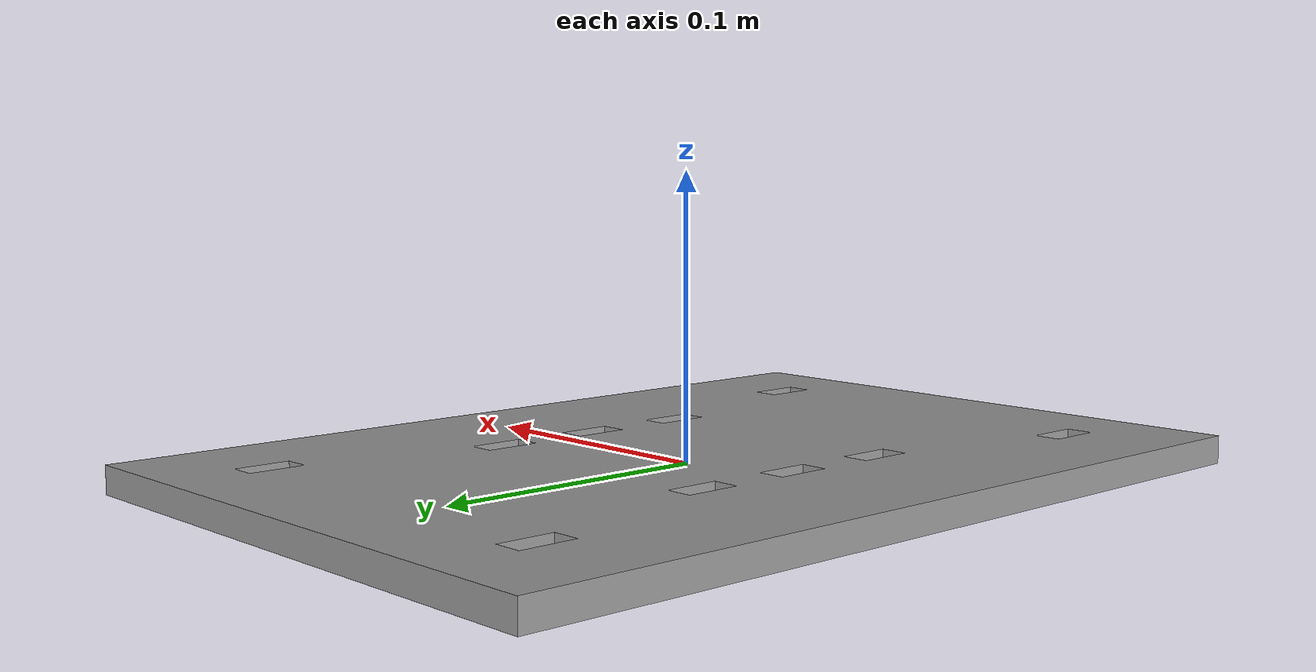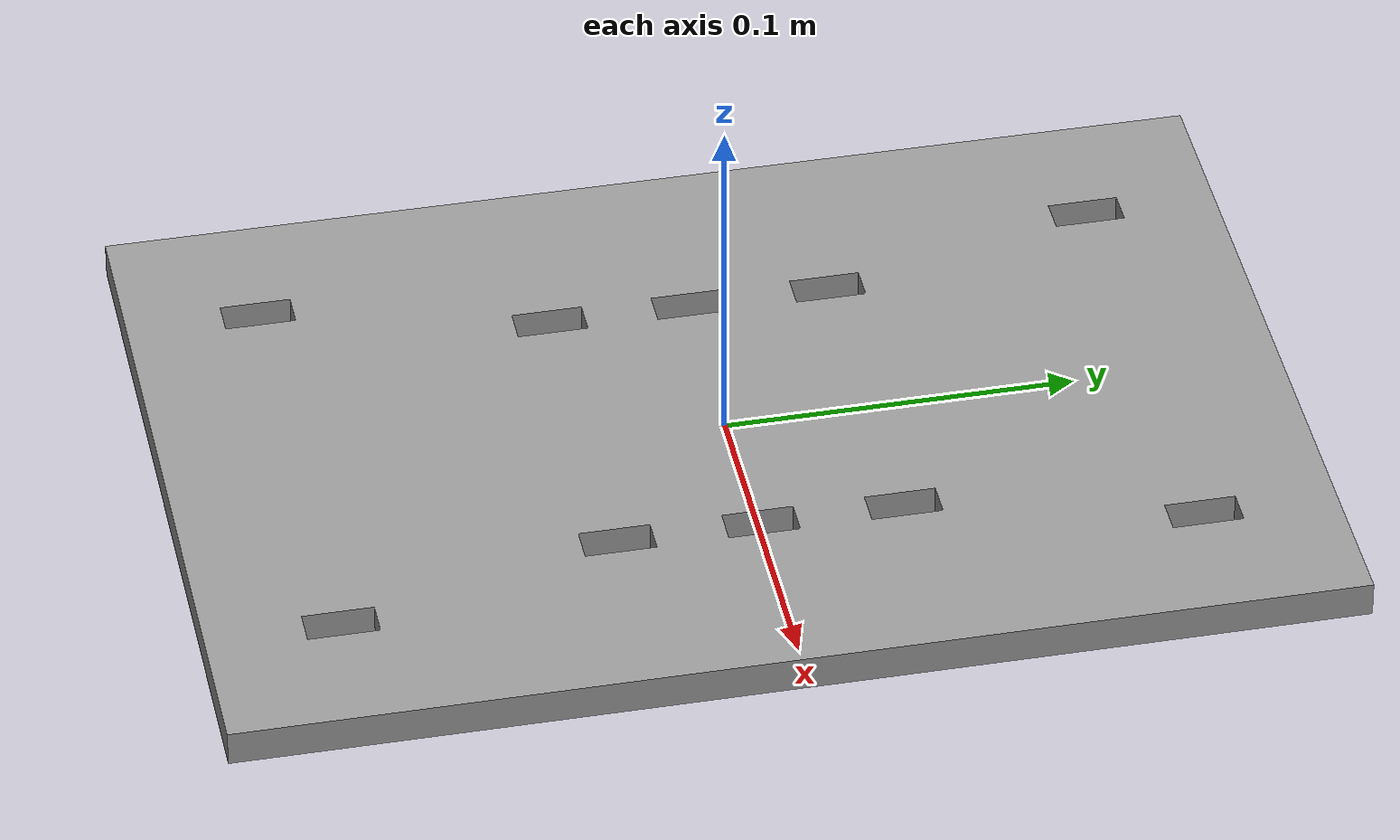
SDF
<?xml version="1.0"?>

<sdf version="1.5">
  <model name="plate_b">

    <static>false</static>

    <link name="link0">
      <collision name="collision">
        <geometry>
          <!-- OR -->
          <mesh>
            <uri>model://plate_b/meshes/plate_b.stl</uri>
          </mesh>
        </geometry>
        <surface>
          <friction>
            <ode>
              <mu>0.99</mu>
              <mu2>0.99</mu2>
            </ode>
          </friction>
        </surface>
      </collision>

      <visual name="visual">
        <geometry>
          <!-- OR -->
          <mesh>
            <uri>model://plate_b/meshes/plate_b.dae</uri>
          </mesh>
        </geometry>
        <!-- OPTIONAL -->
        <material>
          <script>
            <uri>file://media/materials/scripts/gazebo.material</uri>
            <name>Gazebo/Grey</name>
          </script>
        </material>
      </visual>

      <inertial>
        <mass>0.10</mass>
        <inertia>
          <ixx>0.0003858</ixx>
          <ixy>0.0</ixy>
          <ixz>0.0</ixz>
          <iyy>0.0003858</iyy>
          <iyz>0.0</iyz>
          <izz>0.0006050</izz>
        </inertia>
      </inertial>

    </link>

  </model>
</sdf>
